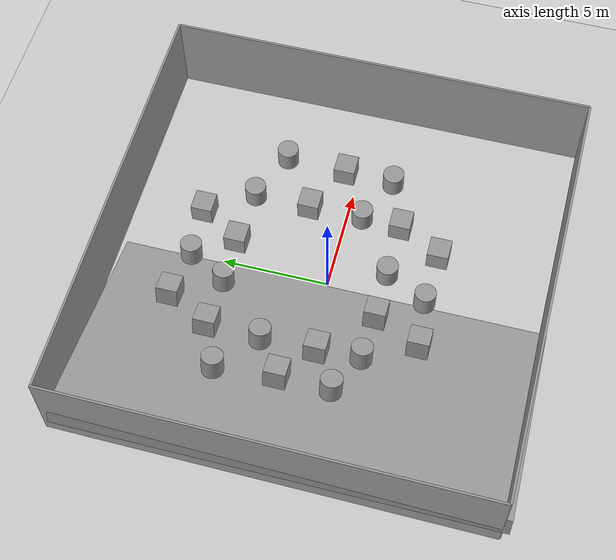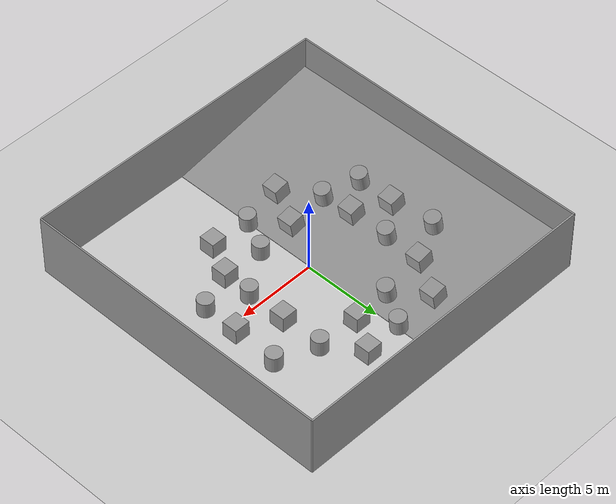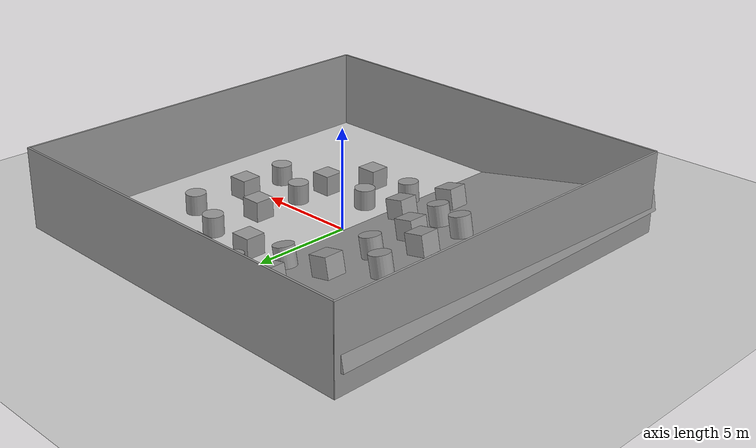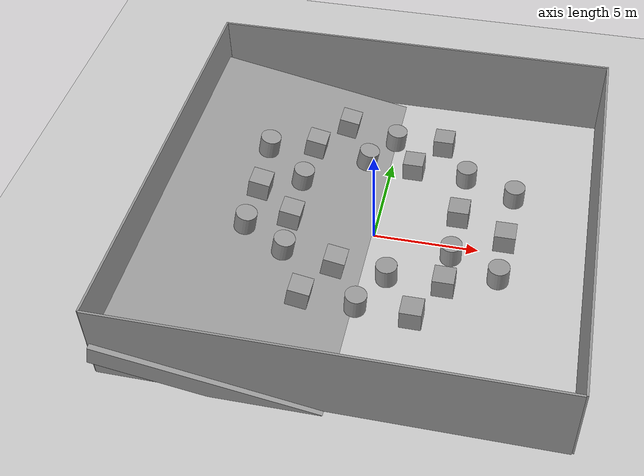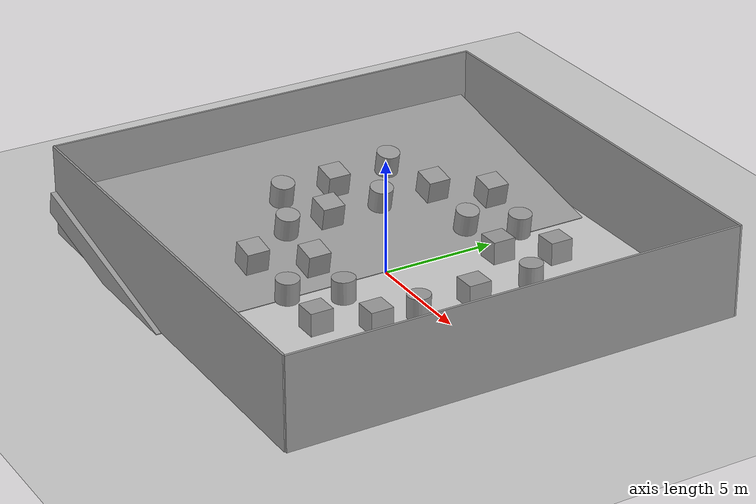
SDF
<sdf version="1.6">
 <world name="default">
  <light name="sun" type="directional">
   <pose>0 0 10 0 -0 0</pose>
   <diffuse>0.8 0.8 0.8 1</diffuse>
   <specular>0.1 0.1 0.1 1</specular>
   <attenuation>
    <range>1000</range>
    <constant>0.9</constant>
    <linear>0.01</linear>
    <quadratic>0.001</quadratic>
   </attenuation>
   <direction>-0.5 0.5 -1</direction>
  </light>
  <model name="ground_plane">
   <static>1</static>
   <link name="link">
    <collision name="collision">
     <geometry><plane><normal>0 0 1</normal><size>100 100</size></plane></geometry>
     <surface><friction><ode><mu>100</mu><mu2>100</mu2></ode></friction></surface>
    </collision>
    <visual name="visual">
     <cast_shadows>0</cast_shadows>
     <geometry><plane><normal>0 0 1</normal><size>100 100</size></plane></geometry>
     <material>
      <script><uri>file://media/materials/scripts/gazebo.material</uri><name>Gazebo/Grey</name></script>
     </material>
    </visual>
   </link>
  </model>
  <gravity>0 0 -9.81</gravity>
  <magnetic_field>6e-06 2.3e-05 -4.2e-05</magnetic_field>
  <atmosphere type="adiabatic"/>
  <physics name="default_physics" default="0" type="ode">
   <max_step_size>0.001</max_step_size>
   <real_time_factor>1</real_time_factor>
   <real_time_update_rate>1000</real_time_update_rate>
   <ode>
    <solver>
     <type>quick</type>
     <iters>1000</iters>
     <sor>1.3</sor>
     <use_dynamic_moi_rescaling>0</use_dynamic_moi_rescaling>
    </solver>
    <constraints>
     <cfm>0</cfm>
     <erp>0.2</erp>
     <contact_max_correcting_vel>100</contact_max_correcting_vel>
     <contact_surface_layer>0.001</contact_surface_layer>
    </constraints>
   </ode>
  </physics>
  <scene><ambient>0.4 0.4 0.4 1</ambient><background>0.7 0.7 0.7 1</background><shadows>1</shadows></scene>
  <spherical_coordinates>
   <surface_model>EARTH_WGS84</surface_model>
   <latitude_deg>0</latitude_deg>
   <longitude_deg>0</longitude_deg>
   <elevation>0</elevation>
   <heading_deg>0</heading_deg>
  </spherical_coordinates>
  <model name="only_walls">
   <link name="link">
    <inertial>
     <mass>1</mass>
     <inertia>
      <ixx>0.166667</ixx>
      <ixy>0</ixy>
      <ixz>0</ixz>
      <iyy>0.166667</iyy>
      <iyz>0</iyz>
      <izz>0.166667</izz>
     </inertia>
    </inertial>
    <visual name="visual">
     <geometry><box><size>20 0.1 4</size></box></geometry>
     <material>
      <script><name>Gazebo/Grey</name><uri>file://media/materials/scripts/gazebo.material</uri></script>
      <ambient>0.3 0.3 0.3 1</ambient>
      <diffuse>0.7 0.7 0.7 1</diffuse>
      <specular>0.01 0.01 0.01 1</specular>
      <emissive>0 0 0 1</emissive>
      <shader type="vertex"><normal_map>__default__</normal_map></shader>
     </material>
     <pose>0 0 2 0 -0 0</pose>
    </visual>
    <collision name="collision">
     <pose>0 0 2 0 -0 0</pose>
     <geometry><box><size>20 0.1 4</size></box></geometry>
     <surface>
      <friction>
       <ode><mu>1</mu><mu2>1</mu2><fdir1>0 0 0</fdir1><slip1>0</slip1><slip2>0</slip2></ode>
       <torsional>
        <coefficient>1</coefficient>
        <patch_radius>0</patch_radius>
        <surface_radius>0</surface_radius>
        <use_patch_radius>1</use_patch_radius>
        <ode><slip>0</slip></ode>
       </torsional>
      </friction>
      <bounce><restitution_coefficient>0</restitution_coefficient><threshold>1e+06</threshold></bounce>
      <contact>
       <collide_without_contact>0</collide_without_contact>
       <collide_without_contact_bitmask>1</collide_without_contact_bitmask>
       <collide_bitmask>1</collide_bitmask>
       <ode>
        <soft_cfm>0</soft_cfm>
        <soft_erp>0.2</soft_erp>
        <kp>1e+13</kp>
        <kd>1</kd>
        <max_vel>0.01</max_vel>
        <min_depth>0</min_depth>
       </ode>
       <bullet>
        <split_impulse>1</split_impulse>
        <split_impulse_penetration_threshold>-0.01</split_impulse_penetration_threshold>
        <soft_cfm>0</soft_cfm>
        <soft_erp>0.2</soft_erp>
        <kp>1e+13</kp>
        <kd>1</kd>
       </bullet>
      </contact>
     </surface>
    </collision>
   </link>
   <link name="link_clone">
    <pose>-0 20 -0 -4e-06 -1e-05 0.004611</pose>
    <inertial>
     <mass>1</mass>
     <inertia>
      <ixx>0.166667</ixx>
      <ixy>0</ixy>
      <ixz>0</ixz>
      <iyy>0.166667</iyy>
      <iyz>0</iyz>
      <izz>0.166667</izz>
     </inertia>
    </inertial>
    <visual name="visual">
     <geometry><box><size>20 0.1 4</size></box></geometry>
     <material>
      <script><name>Gazebo/Grey</name><uri>file://media/materials/scripts/gazebo.material</uri></script>
      <ambient>0.3 0.3 0.3 1</ambient>
      <diffuse>0.7 0.7 0.7 1</diffuse>
      <specular>0.01 0.01 0.01 1</specular>
      <emissive>0 0 0 1</emissive>
      <shader type="vertex"><normal_map>__default__</normal_map></shader>
     </material>
     <pose>0 0 2 0 -0 0</pose>
    </visual>
    <collision name="collision">
     <pose>0 0 2 0 -0 0</pose>
     <geometry><box><size>20 0.1 4</size></box></geometry>
     <surface>
      <friction>
       <ode><mu>1</mu><mu2>1</mu2><fdir1>0 0 0</fdir1><slip1>0</slip1><slip2>0</slip2></ode>
       <torsional>
        <coefficient>1</coefficient>
        <patch_radius>0</patch_radius>
        <surface_radius>0</surface_radius>
        <use_patch_radius>1</use_patch_radius>
        <ode><slip>0</slip></ode>
       </torsional>
      </friction>
      <bounce><restitution_coefficient>0</restitution_coefficient><threshold>1e+06</threshold></bounce>
      <contact>
       <collide_without_contact>0</collide_without_contact>
       <collide_without_contact_bitmask>1</collide_without_contact_bitmask>
       <collide_bitmask>1</collide_bitmask>
       <ode>
        <soft_cfm>0</soft_cfm>
        <soft_erp>0.2</soft_erp>
        <kp>1e+13</kp>
        <kd>1</kd>
        <max_vel>0.01</max_vel>
        <min_depth>0</min_depth>
       </ode>
       <bullet>
        <split_impulse>1</split_impulse>
        <split_impulse_penetration_threshold>-0.01</split_impulse_penetration_threshold>
        <soft_cfm>0</soft_cfm>
        <soft_erp>0.2</soft_erp>
        <kp>1e+13</kp>
        <kd>1</kd>
       </bullet>
      </contact>
     </surface>
    </collision>
   </link>
   <link name="link_clone_0">
    <pose>-10 10 -0 -4e-06 -1e-05 1.57</pose>
    <inertial>
     <mass>1</mass>
     <inertia>
      <ixx>0.166667</ixx>
      <ixy>0</ixy>
      <ixz>0</ixz>
      <iyy>0.166667</iyy>
      <iyz>0</iyz>
      <izz>0.166667</izz>
     </inertia>
    </inertial>
    <visual name="visual">
     <geometry><box><size>20 0.1 4</size></box></geometry>
     <material>
      <script><name>Gazebo/Grey</name><uri>file://media/materials/scripts/gazebo.material</uri></script>
      <ambient>0.3 0.3 0.3 1</ambient>
      <diffuse>0.7 0.7 0.7 1</diffuse>
      <specular>0.01 0.01 0.01 1</specular>
      <emissive>0 0 0 1</emissive>
      <shader type="vertex"><normal_map>__default__</normal_map></shader>
     </material>
     <pose>0 0 2 0 -0 0</pose>
    </visual>
    <collision name="collision">
     <pose>0 0 2 0 -0 0</pose>
     <geometry><box><size>20 0.1 4</size></box></geometry>
     <surface>
      <friction>
       <ode><mu>1</mu><mu2>1</mu2><fdir1>0 0 0</fdir1><slip1>0</slip1><slip2>0</slip2></ode>
       <torsional>
        <coefficient>1</coefficient>
        <patch_radius>0</patch_radius>
        <surface_radius>0</surface_radius>
        <use_patch_radius>1</use_patch_radius>
        <ode><slip>0</slip></ode>
       </torsional>
      </friction>
      <bounce><restitution_coefficient>0</restitution_coefficient><threshold>1e+06</threshold></bounce>
      <contact>
       <collide_without_contact>0</collide_without_contact>
       <collide_without_contact_bitmask>1</collide_without_contact_bitmask>
       <collide_bitmask>1</collide_bitmask>
       <ode>
        <soft_cfm>0</soft_cfm>
        <soft_erp>0.2</soft_erp>
        <kp>1e+13</kp>
        <kd>1</kd>
        <max_vel>0.01</max_vel>
        <min_depth>0</min_depth>
       </ode>
       <bullet>
        <split_impulse>1</split_impulse>
        <split_impulse_penetration_threshold>-0.01</split_impulse_penetration_threshold>
        <soft_cfm>0</soft_cfm>
        <soft_erp>0.2</soft_erp>
        <kp>1e+13</kp>
        <kd>1</kd>
       </bullet>
      </contact>
     </surface>
    </collision>
   </link>
   <link name="link_clone_0_clone">
    <pose>10 10 -5.5e-05 -1.4e-05 -6e-06 1.57461</pose>
    <inertial>
     <mass>1</mass>
     <inertia>
      <ixx>0.166667</ixx>
      <ixy>0</ixy>
      <ixz>0</ixz>
      <iyy>0.166667</iyy>
      <iyz>0</iyz>
      <izz>0.166667</izz>
     </inertia>
    </inertial>
    <visual name="visual">
     <geometry><box><size>20 0.1 4</size></box></geometry>
     <material>
      <script><name>Gazebo/Grey</name><uri>file://media/materials/scripts/gazebo.material</uri></script>
      <ambient>0.3 0.3 0.3 1</ambient>
      <diffuse>0.7 0.7 0.7 1</diffuse>
      <specular>0.01 0.01 0.01 1</specular>
      <emissive>0 0 0 1</emissive>
      <shader type="vertex"><normal_map>__default__</normal_map></shader>
     </material>
     <pose>0 0 2 0 -0 0</pose>
    </visual>
    <collision name="collision">
     <pose>0 0 2 0 -0 0</pose>
     <geometry><box><size>20 0.1 4</size></box></geometry>
     <surface>
      <friction>
       <ode><mu>1</mu><mu2>1</mu2><fdir1>0 0 0</fdir1><slip1>0</slip1><slip2>0</slip2></ode>
       <torsional>
        <coefficient>1</coefficient>
        <patch_radius>0</patch_radius>
        <surface_radius>0</surface_radius>
        <use_patch_radius>1</use_patch_radius>
        <ode><slip>0</slip></ode>
       </torsional>
      </friction>
      <bounce><restitution_coefficient>0</restitution_coefficient><threshold>1e+06</threshold></bounce>
      <contact>
       <collide_without_contact>0</collide_without_contact>
       <collide_without_contact_bitmask>1</collide_without_contact_bitmask>
       <collide_bitmask>1</collide_bitmask>
       <ode>
        <soft_cfm>0</soft_cfm>
        <soft_erp>0.2</soft_erp>
        <kp>1e+13</kp>
        <kd>1</kd>
        <max_vel>0.01</max_vel>
        <min_depth>0</min_depth>
       </ode>
       <bullet>
        <split_impulse>1</split_impulse>
        <split_impulse_penetration_threshold>-0.01</split_impulse_penetration_threshold>
        <soft_cfm>0</soft_cfm>
        <soft_erp>0.2</soft_erp>
        <kp>1e+13</kp>
        <kd>1</kd>
       </bullet>
      </contact>
     </surface>
    </collision>
   </link>
   <static>1</static>
   <pose>9.6e-05 -10.0045 -0.000102 4e-06 1e-05 -0.004611</pose>
  </model>
  <model name="unit_cylinder">
   <pose>3.80587 -0.728018 0.499997 4e-06 4e-06 -0</pose>
   <link name="link">
    <inertial>
     <mass>1</mass>
     <inertia><ixx>0.145833</ixx><ixy>0</ixy><ixz>0</ixz><iyy>0.145833</iyy><iyz>0</iyz><izz>0.125</izz></inertia>
    </inertial>
    <collision name="collision">
     <geometry><cylinder><radius>0.5</radius><length>1</length></cylinder></geometry>
    </collision>
    <visual name="visual">
     <geometry><cylinder><radius>0.5</radius><length>1</length></cylinder></geometry>
     <material>
      <script><name>Gazebo/Grey</name><uri>file://media/materials/scripts/gazebo.material</uri></script>
     </material>
    </visual>
   </link>
  </model>
  <model name="unit_box">
   <pose>3.81963 1.81834 0.5 0 -0 0</pose>
   <link name="link">
    <inertial>
     <mass>1</mass>
     <inertia>
      <ixx>0.166667</ixx>
      <ixy>0</ixy>
      <ixz>0</ixz>
      <iyy>0.166667</iyy>
      <iyz>0</iyz>
      <izz>0.166667</izz>
     </inertia>
    </inertial>
    <collision name="collision"><geometry><box><size>1 1 1</size></box></geometry></collision>
    <visual name="visual">
     <geometry><box><size>1 1 1</size></box></geometry>
     <material>
      <script><name>Gazebo/Grey</name><uri>file://media/materials/scripts/gazebo.material</uri></script>
     </material>
    </visual>
   </link>
  </model>
  <model name="unit_cylinder_0">
   <pose>3.83311 4.52075 0.499997 4e-06 4e-06 -0</pose>
   <link name="link">
    <inertial>
     <mass>1</mass>
     <inertia><ixx>0.145833</ixx><ixy>0</ixy><ixz>0</ixz><iyy>0.145833</iyy><iyz>0</iyz><izz>0.125</izz></inertia>
    </inertial>
    <collision name="collision">
     <geometry><cylinder><radius>0.5</radius><length>1</length></cylinder></geometry>
    </collision>
    <visual name="visual">
     <geometry><cylinder><radius>0.5</radius><length>1</length></cylinder></geometry>
     <material>
      <script><name>Gazebo/Grey</name><uri>file://media/materials/scripts/gazebo.material</uri></script>
     </material>
    </visual>
   </link>
  </model>
  <model name="unit_box_0">
   <pose>1.15614 4.66056 0.5 0 -0 0</pose>
   <link name="link">
    <inertial>
     <mass>1</mass>
     <inertia>
      <ixx>0.166667</ixx>
      <ixy>0</ixy>
      <ixz>0</ixz>
      <iyy>0.166667</iyy>
      <iyz>0</iyz>
      <izz>0.166667</izz>
     </inertia>
    </inertial>
    <collision name="collision"><geometry><box><size>1 1 1</size></box></geometry></collision>
    <visual name="visual">
     <geometry><box><size>1 1 1</size></box></geometry>
     <material>
      <script><name>Gazebo/Grey</name><uri>file://media/materials/scripts/gazebo.material</uri></script>
     </material>
    </visual>
   </link>
  </model>
  <model name="unit_cylinder_1">
   <pose>-1.19906 4.60526 0.734905 1e-06 0.199207 7e-06</pose>
   <link name="link">
    <inertial>
     <mass>1</mass>
     <inertia><ixx>0.145833</ixx><ixy>0</ixy><ixz>0</ixz><iyy>0.145833</iyy><iyz>0</iyz><izz>0.125</izz></inertia>
    </inertial>
    <collision name="collision">
     <geometry><cylinder><radius>0.5</radius><length>1</length></cylinder></geometry>
    </collision>
    <visual name="visual">
     <geometry><cylinder><radius>0.5</radius><length>1</length></cylinder></geometry>
     <material>
      <script><name>Gazebo/Grey</name><uri>file://media/materials/scripts/gazebo.material</uri></script>
     </material>
    </visual>
   </link>
  </model>
  <model name="unit_box_1">
   <pose>-3.81166 4.56226 1.26235 2.4e-05 0.199208 0.000123</pose>
   <link name="link">
    <inertial>
     <mass>1</mass>
     <inertia>
      <ixx>0.166667</ixx>
      <ixy>0</ixy>
      <ixz>0</ixz>
      <iyy>0.166667</iyy>
      <iyz>0</iyz>
      <izz>0.166667</izz>
     </inertia>
    </inertial>
    <collision name="collision"><geometry><box><size>1 1 1</size></box></geometry></collision>
    <visual name="visual">
     <geometry><box><size>1 1 1</size></box></geometry>
     <material>
      <script><name>Gazebo/Grey</name><uri>file://media/materials/scripts/gazebo.material</uri></script>
     </material>
    </visual>
   </link>
  </model>
  <model name="unit_cylinder_2">
   <pose>-3.91632 2.06192 1.28349 2e-06 0.199216 1.3e-05</pose>
   <link name="link">
    <inertial>
     <mass>1</mass>
     <inertia><ixx>0.145833</ixx><ixy>0</ixy><ixz>0</ixz><iyy>0.145833</iyy><iyz>0</iyz><izz>0.125</izz></inertia>
    </inertial>
    <collision name="collision">
     <geometry><cylinder><radius>0.5</radius><length>1</length></cylinder></geometry>
    </collision>
    <visual name="visual">
     <geometry><cylinder><radius>0.5</radius><length>1</length></cylinder></geometry>
     <material>
      <script><name>Gazebo/Grey</name><uri>file://media/materials/scripts/gazebo.material</uri></script>
     </material>
    </visual>
   </link>
  </model>
  <model name="unit_cylinder_3">
   <pose>-3.71579 -2.51067 1.243 -1e-06 0.199204 -5e-06</pose>
   <link name="link">
    <inertial>
     <mass>1</mass>
     <inertia><ixx>0.145833</ixx><ixy>0</ixy><ixz>0</ixz><iyy>0.145833</iyy><iyz>0</iyz><izz>0.125</izz></inertia>
    </inertial>
    <collision name="collision">
     <geometry><cylinder><radius>0.5</radius><length>1</length></cylinder></geometry>
    </collision>
    <visual name="visual">
     <geometry><cylinder><radius>0.5</radius><length>1</length></cylinder></geometry>
     <material>
      <script><name>Gazebo/Grey</name><uri>file://media/materials/scripts/gazebo.material</uri></script>
     </material>
    </visual>
   </link>
  </model>
  <model name="unit_box_2">
   <pose>-3.86851 -0.504368 1.27383 2.5e-05 0.199208 0.000129</pose>
   <link name="link">
    <inertial>
     <mass>1</mass>
     <inertia>
      <ixx>0.166667</ixx>
      <ixy>0</ixy>
      <ixz>0</ixz>
      <iyy>0.166667</iyy>
      <iyz>0</iyz>
      <izz>0.166667</izz>
     </inertia>
    </inertial>
    <collision name="collision"><geometry><box><size>1 1 1</size></box></geometry></collision>
    <visual name="visual">
     <geometry><box><size>1 1 1</size></box></geometry>
     <material>
      <script><name>Gazebo/Grey</name><uri>file://media/materials/scripts/gazebo.material</uri></script>
     </material>
    </visual>
   </link>
  </model>
  <model name="unit_box_3">
   <pose>-1.3135 -2.60575 0.758009 1e-05 0.199208 5e-05</pose>
   <link name="link">
    <inertial>
     <mass>1</mass>
     <inertia>
      <ixx>0.166667</ixx>
      <ixy>0</ixy>
      <ixz>0</ixz>
      <iyy>0.166667</iyy>
      <iyz>0</iyz>
      <izz>0.166667</izz>
     </inertia>
    </inertial>
    <collision name="collision"><geometry><box><size>1 1 1</size></box></geometry></collision>
    <visual name="visual">
     <geometry><box><size>1 1 1</size></box></geometry>
     <material>
      <script><name>Gazebo/Grey</name><uri>file://media/materials/scripts/gazebo.material</uri></script>
     </material>
    </visual>
   </link>
  </model>
  <model name="unit_box_4">
   <pose>3.74949 -2.6277 0.5 0 -0 0</pose>
   <link name="link">
    <inertial>
     <mass>1</mass>
     <inertia>
      <ixx>0.166667</ixx>
      <ixy>0</ixy>
      <ixz>0</ixz>
      <iyy>0.166667</iyy>
      <iyz>0</iyz>
      <izz>0.166667</izz>
     </inertia>
    </inertial>
    <collision name="collision"><geometry><box><size>1 1 1</size></box></geometry></collision>
    <visual name="visual">
     <geometry><box><size>1 1 1</size></box></geometry>
     <material>
      <script><name>Gazebo/Grey</name><uri>file://media/materials/scripts/gazebo.material</uri></script>
     </material>
    </visual>
   </link>
  </model>
  <model name="unit_cylinder_4">
   <pose>1.09983 -2.57934 0.499997 4e-06 4e-06 -0</pose>
   <link name="link">
    <inertial>
     <mass>1</mass>
     <inertia><ixx>0.145833</ixx><ixy>0</ixy><ixz>0</ixz><iyy>0.145833</iyy><iyz>0</iyz><izz>0.125</izz></inertia>
    </inertial>
    <collision name="collision">
     <geometry><cylinder><radius>0.5</radius><length>1</length></cylinder></geometry>
    </collision>
    <visual name="visual">
     <geometry><cylinder><radius>0.5</radius><length>1</length></cylinder></geometry>
     <material>
      <script><name>Gazebo/Grey</name><uri>file://media/materials/scripts/gazebo.material</uri></script>
     </material>
    </visual>
   </link>
  </model>
  <model name="unit_cylinder_5">
   <pose>-5.97427 3.59501 1.69895 0 0.199203 0</pose>
   <link name="link">
    <inertial>
     <mass>1</mass>
     <inertia><ixx>0.145833</ixx><ixy>0</ixy><ixz>0</ixz><iyy>0.145833</iyy><iyz>0</iyz><izz>0.125</izz></inertia>
    </inertial>
    <collision name="collision">
     <geometry><cylinder><radius>0.5</radius><length>1</length></cylinder></geometry>
    </collision>
    <visual name="visual">
     <geometry><cylinder><radius>0.5</radius><length>1</length></cylinder></geometry>
     <material>
      <script><name>Gazebo/Grey</name><uri>file://media/materials/scripts/gazebo.material</uri></script>
     </material>
    </visual>
   </link>
  </model>
  <model name="unit_box_5">
   <pose>-5.67594 0.789662 1.63872 8e-06 0.199208 4.1e-05</pose>
   <link name="link">
    <inertial>
     <mass>1</mass>
     <inertia>
      <ixx>0.166667</ixx>
      <ixy>0</ixy>
      <ixz>0</ixz>
      <iyy>0.166667</iyy>
      <iyz>0</iyz>
      <izz>0.166667</izz>
     </inertia>
    </inertial>
    <collision name="collision"><geometry><box><size>1 1 1</size></box></geometry></collision>
    <visual name="visual">
     <geometry><box><size>1 1 1</size></box></geometry>
     <material>
      <script><name>Gazebo/Grey</name><uri>file://media/materials/scripts/gazebo.material</uri></script>
     </material>
    </visual>
   </link>
  </model>
  <model name="unit_cylinder_6">
   <pose>-5.72039 -1.64565 1.64769 1e-05 0.199208 5e-05</pose>
   <link name="link">
    <inertial>
     <mass>1</mass>
     <inertia><ixx>0.145833</ixx><ixy>0</ixy><ixz>0</ixz><iyy>0.145833</iyy><iyz>0</iyz><izz>0.125</izz></inertia>
    </inertial>
    <collision name="collision">
     <geometry><cylinder><radius>0.5</radius><length>1</length></cylinder></geometry>
    </collision>
    <visual name="visual">
     <geometry><cylinder><radius>0.5</radius><length>1</length></cylinder></geometry>
     <material>
      <script><name>Gazebo/Grey</name><uri>file://media/materials/scripts/gazebo.material</uri></script>
     </material>
    </visual>
   </link>
  </model>
  <model name="unit_box_6">
   <pose>-2.39634 -4.82127 0.976617 1e-05 0.199208 4.9e-05</pose>
   <link name="link">
    <inertial>
     <mass>1</mass>
     <inertia>
      <ixx>0.166667</ixx>
      <ixy>0</ixy>
      <ixz>0</ixz>
      <iyy>0.166667</iyy>
      <iyz>0</iyz>
      <izz>0.166667</izz>
     </inertia>
    </inertial>
    <collision name="collision"><geometry><box><size>1 1 1</size></box></geometry></collision>
    <visual name="visual">
     <geometry><box><size>1 1 1</size></box></geometry>
     <material>
      <script><name>Gazebo/Grey</name><uri>file://media/materials/scripts/gazebo.material</uri></script>
     </material>
    </visual>
   </link>
  </model>
  <model name="unit_cylinder_7">
   <pose>0.076018 -4.56871 0.536412 1e-06 0.075764 -1e-06</pose>
   <link name="link">
    <inertial>
     <mass>1</mass>
     <inertia><ixx>0.145833</ixx><ixy>0</ixy><ixz>0</ixz><iyy>0.145833</iyy><iyz>0</iyz><izz>0.125</izz></inertia>
    </inertial>
    <collision name="collision">
     <geometry><cylinder><radius>0.5</radius><length>1</length></cylinder></geometry>
    </collision>
    <visual name="visual">
     <geometry><cylinder><radius>0.5</radius><length>1</length></cylinder></geometry>
     <material>
      <script><name>Gazebo/Grey</name><uri>file://media/materials/scripts/gazebo.material</uri></script>
     </material>
    </visual>
   </link>
  </model>
  <model name="unit_box_7">
   <pose>2.62918 -4.68565 0.5 0 -0 0</pose>
   <link name="link">
    <inertial>
     <mass>1</mass>
     <inertia>
      <ixx>0.166667</ixx>
      <ixy>0</ixy>
      <ixz>0</ixz>
      <iyy>0.166667</iyy>
      <iyz>0</iyz>
      <izz>0.166667</izz>
     </inertia>
    </inertial>
    <collision name="collision"><geometry><box><size>1 1 1</size></box></geometry></collision>
    <visual name="visual">
     <geometry><box><size>1 1 1</size></box></geometry>
     <material>
      <script><name>Gazebo/Grey</name><uri>file://media/materials/scripts/gazebo.material</uri></script>
     </material>
    </visual>
   </link>
  </model>
  <model name="unit_box_8">
   <pose>6.16809 0.640648 0.5 0 -0 0</pose>
   <link name="link">
    <inertial>
     <mass>1</mass>
     <inertia>
      <ixx>0.166667</ixx>
      <ixy>0</ixy>
      <ixz>0</ixz>
      <iyy>0.166667</iyy>
      <iyz>0</iyz>
      <izz>0.166667</izz>
     </inertia>
    </inertial>
    <collision name="collision"><geometry><box><size>1 1 1</size></box></geometry></collision>
    <visual name="visual">
     <geometry><box><size>1 1 1</size></box></geometry>
     <material>
      <script><name>Gazebo/Grey</name><uri>file://media/materials/scripts/gazebo.material</uri></script>
     </material>
    </visual>
   </link>
  </model>
  <model name="unit_cylinder_8">
   <pose>6.11943 -1.71062 0.499997 4e-06 4e-06 -0</pose>
   <link name="link">
    <inertial>
     <mass>1</mass>
     <inertia><ixx>0.145833</ixx><ixy>0</ixy><ixz>0</ixz><iyy>0.145833</iyy><iyz>0</iyz><izz>0.125</izz></inertia>
    </inertial>
    <collision name="collision">
     <geometry><cylinder><radius>0.5</radius><length>1</length></cylinder></geometry>
    </collision>
    <visual name="visual">
     <geometry><cylinder><radius>0.5</radius><length>1</length></cylinder></geometry>
     <material>
      <script><name>Gazebo/Grey</name><uri>file://media/materials/scripts/gazebo.material</uri></script>
     </material>
    </visual>
   </link>
  </model>
  <model name="unit_cylinder_9">
   <pose>6.30368 3.58043 0.499997 4e-06 4e-06 -0</pose>
   <link name="link">
    <inertial>
     <mass>1</mass>
     <inertia><ixx>0.145833</ixx><ixy>0</ixy><ixz>0</ixz><iyy>0.145833</iyy><iyz>0</iyz><izz>0.125</izz></inertia>
    </inertial>
    <collision name="collision">
     <geometry><cylinder><radius>0.5</radius><length>1</length></cylinder></geometry>
    </collision>
    <visual name="visual">
     <geometry><cylinder><radius>0.5</radius><length>1</length></cylinder></geometry>
     <material>
      <script><name>Gazebo/Grey</name><uri>file://media/materials/scripts/gazebo.material</uri></script>
     </material>
    </visual>
   </link>
  </model>
  <model name="unit_box_9">
   <pose>-2.5811 6.69829 1.01392 9e-06 0.199208 4.8e-05</pose>
   <link name="link">
    <inertial>
     <mass>1</mass>
     <inertia>
      <ixx>0.166667</ixx>
      <ixy>0</ixy>
      <ixz>0</ixz>
      <iyy>0.166667</iyy>
      <iyz>0</iyz>
      <izz>0.166667</izz>
     </inertia>
    </inertial>
    <collision name="collision"><geometry><box><size>1 1 1</size></box></geometry></collision>
    <visual name="visual">
     <geometry><box><size>1 1 1</size></box></geometry>
     <material>
      <script><name>Gazebo/Grey</name><uri>file://media/materials/scripts/gazebo.material</uri></script>
     </material>
    </visual>
   </link>
  </model>
  <model name="unit_cylinder_10">
   <pose>-0.080697 6.51262 0.552195 4e-06 0.110742 2.9e-05</pose>
   <link name="link">
    <inertial>
     <mass>1</mass>
     <inertia><ixx>0.145833</ixx><ixy>0</ixy><ixz>0</ixz><iyy>0.145833</iyy><iyz>0</iyz><izz>0.125</izz></inertia>
    </inertial>
    <collision name="collision">
     <geometry><cylinder><radius>0.5</radius><length>1</length></cylinder></geometry>
    </collision>
    <visual name="visual">
     <geometry><cylinder><radius>0.5</radius><length>1</length></cylinder></geometry>
     <material>
      <script><name>Gazebo/Grey</name><uri>file://media/materials/scripts/gazebo.material</uri></script>
     </material>
    </visual>
   </link>
  </model>
  <model name="unit_box_10">
   <pose>2.39954 6.64101 0.5 0 -0 0</pose>
   <link name="link">
    <inertial>
     <mass>1</mass>
     <inertia>
      <ixx>0.166667</ixx>
      <ixy>0</ixy>
      <ixz>0</ixz>
      <iyy>0.166667</iyy>
      <iyz>0</iyz>
      <izz>0.166667</izz>
     </inertia>
    </inertial>
    <collision name="collision"><geometry><box><size>1 1 1</size></box></geometry></collision>
    <visual name="visual">
     <geometry><box><size>1 1 1</size></box></geometry>
     <material>
      <script><name>Gazebo/Grey</name><uri>file://media/materials/scripts/gazebo.material</uri></script>
     </material>
    </visual>
   </link>
  </model>
  <model name="tilted_floor">
   <link name="link">
    <inertial>
     <mass>1</mass>
     <inertia>
      <ixx>0.166667</ixx>
      <ixy>0</ixy>
      <ixz>0</ixz>
      <iyy>0.166667</iyy>
      <iyz>0</iyz>
      <izz>0.166667</izz>
     </inertia>
    </inertial>
    <pose>3.57838 -0.422573 -0.29078 0 0.182698 0</pose>
    <visual name="visual">
     <geometry><box><size>10 20 1</size></box></geometry>
     <material>
      <script><name>Gazebo/Grey</name><uri>file://media/materials/scripts/gazebo.material</uri></script>
      <shader type="pixel"><normal_map>__default__</normal_map></shader>
      <ambient>0.3 0.3 0.3 1</ambient>
      <diffuse>0.7 0.7 0.7 1</diffuse>
      <specular>0.01 0.01 0.01 1</specular>
      <emissive>0 0 0 1</emissive>
     </material>
    </visual>
    <collision name="collision">
     <geometry><box><size>10 20 1</size></box></geometry>
     <surface>
      <friction>
       <ode><mu>1</mu><mu2>1</mu2><fdir1>0 0 0</fdir1><slip1>0</slip1><slip2>0</slip2></ode>
       <torsional>
        <coefficient>1</coefficient>
        <patch_radius>0</patch_radius>
        <surface_radius>0</surface_radius>
        <use_patch_radius>1</use_patch_radius>
        <ode><slip>0</slip></ode>
       </torsional>
      </friction>
      <bounce><restitution_coefficient>0</restitution_coefficient><threshold>1e+06</threshold></bounce>
      <contact>
       <collide_without_contact>0</collide_without_contact>
       <collide_without_contact_bitmask>1</collide_without_contact_bitmask>
       <collide_bitmask>1</collide_bitmask>
       <ode>
        <soft_cfm>0</soft_cfm>
        <soft_erp>0.2</soft_erp>
        <kp>1e+13</kp>
        <kd>1</kd>
        <max_vel>0.01</max_vel>
        <min_depth>0</min_depth>
       </ode>
       <bullet>
        <split_impulse>1</split_impulse>
        <split_impulse_penetration_threshold>-0.01</split_impulse_penetration_threshold>
        <soft_cfm>0</soft_cfm>
        <soft_erp>0.2</soft_erp>
        <kp>1e+13</kp>
        <kd>1</kd>
       </bullet>
      </contact>
     </surface>
    </collision>
   </link>
   <static>1</static>
   <pose>-8.67285 0.148721 0.852042 0 0.01651 0</pose>
  </model>
 </world>
</sdf>
